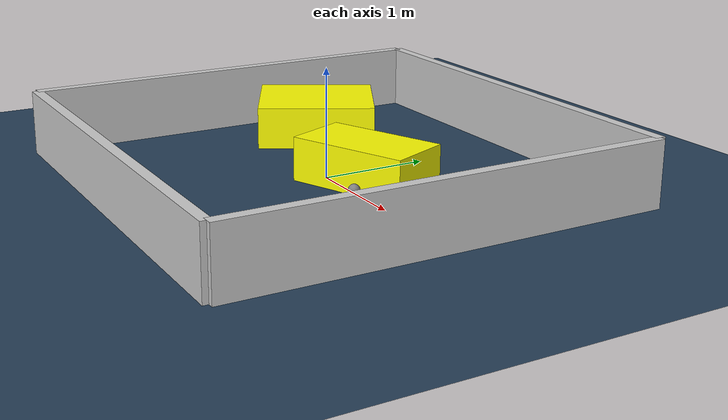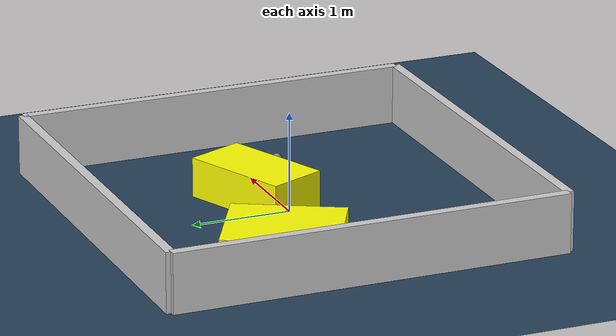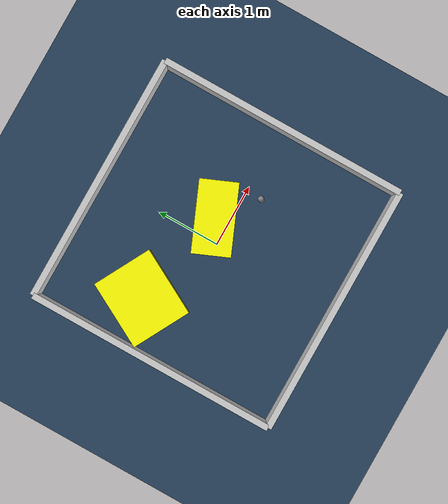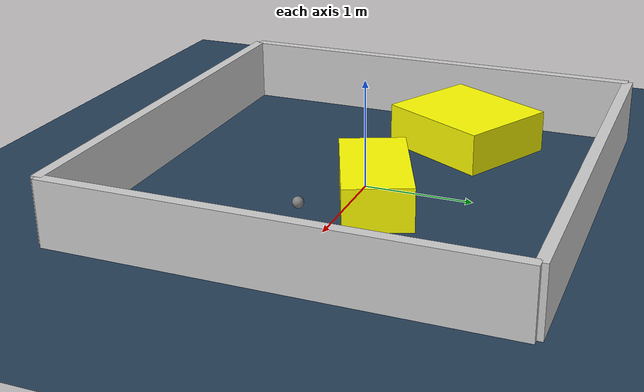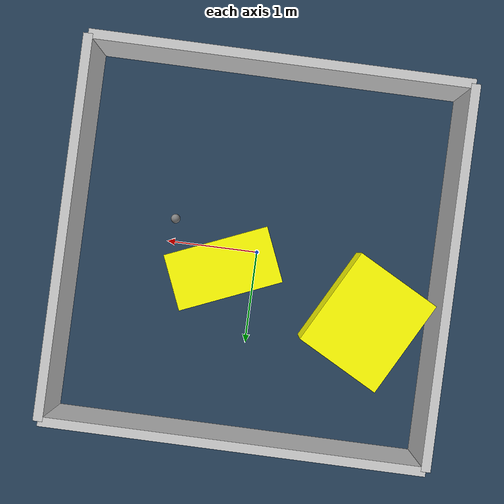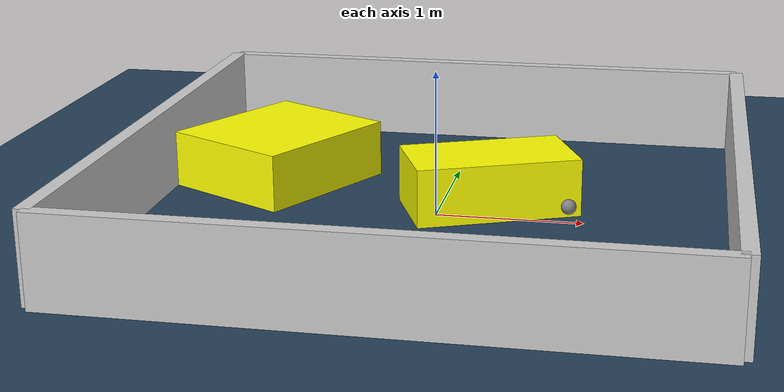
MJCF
<?xml version="1.0" ?>
<mujoco model="generated_environment">
  <option timestep="0.01" integrator="RK4" cone="elliptic"/>
  <default>
    <geom density="1"/>
  </default>
  <asset>
    <texture builtin="gradient" height="3072" rgb1="0.3 0.5 0.7" rgb2="0 0 0" type="skybox" width="512"/>
    <texture builtin="checker" height="300" mark="edge" markrgb="0.8 0.8 0.8" name="groundplane" rgb1="0.2 0.3 0.4" rgb2="0.1 0.2 0.3" type="2d" width="300"/>
    <material name="groundplane" reflectance="0.2" texrepeat="5 5" texture="groundplane" texuniform="true"/>
    <material name="robot" rgba="0.0 1.0 0.0 1"/>
  </asset>
  <worldbody>
    <light dir="0 0 -1" directional="true" pos="0 0 1.5"/>
    <geom condim="4" friction="1.0 0.005 0.001" material="groundplane" name="floor" size="0 0 0.05" type="plane"/>
    <body name="walls">
      <geom name="wall_1" condim="4" pos="-2.0 0.0 0.3" rgba="0.800000011920929 0.800000011920929 0.800000011920929 1.0" size="0.05 2.0 0.3" type="box"/>
      <geom name="wall_2" condim="4" pos="2.0 0.0 0.3" rgba="0.800000011920929 0.800000011920929 0.800000011920929 1.0" size="0.05 2.0 0.3" type="box"/>
      <geom name="wall_3" condim="4" pos="0.0 -2.0 0.3" rgba="0.800000011920929 0.800000011920929 0.800000011920929 1.0" size="2.0 0.05 0.3" type="box"/>
      <geom name="wall_4" condim="4" pos="0.0 2.0 0.3" rgba="0.800000011920929 0.800000011920929 0.800000011920929 1.0" size="2.0 0.05 0.3" type="box"/>
    </body>
    <body name="robot">
      <joint name="joint_x" type="slide" pos="0 0 0" axis="1 0 0"/>
      <joint name="joint_y" type="slide" pos="0 0 0" axis="0 1 0"/>
      <geom name="robot" type="sphere" pos="0.919665159857304 -0.25002757685111643 0.2" size="0.05" mass="5." friction="1.0 0.005 0.0001" condim="4"/>
      <site name="sensor_ball"/>
    </body>
    <body name="obstacle_1_movable">
      <geom name="obstacle_1_movable" condim="4" pos="-1.2572915273320986 0.5805259648914236 0.2" euler="0 0 151.63517451226244" friction="1.0 0.005 0.001" rgba="1 1 0 1" size="0.4848398451551191 0.5585656537708326 0.2" type="box" mass="0.1"/>
      <joint type="free"/>
    </body>
    <body name="obstacle_2_movable">
      <geom name="obstacle_2_movable" condim="4" pos="0.33077668497819146 0.21382309425977142 0.2" euler="0 0 112.87262875942753" friction="1.0 0.005 0.001" rgba="1 1 0 1" size="0.3040379907360504 0.5668655965517764 0.2" type="box" mass="0.1"/>
      <joint type="free"/>
    </body>
  </worldbody>
  <actuator>
    <motor name="actuator_x" joint="joint_x" gear="1" ctrlrange="-1 1"/>
    <motor name="actuator_y" joint="joint_y" gear="1" ctrlrange="-1 1"/>
  </actuator>
</mujoco>
